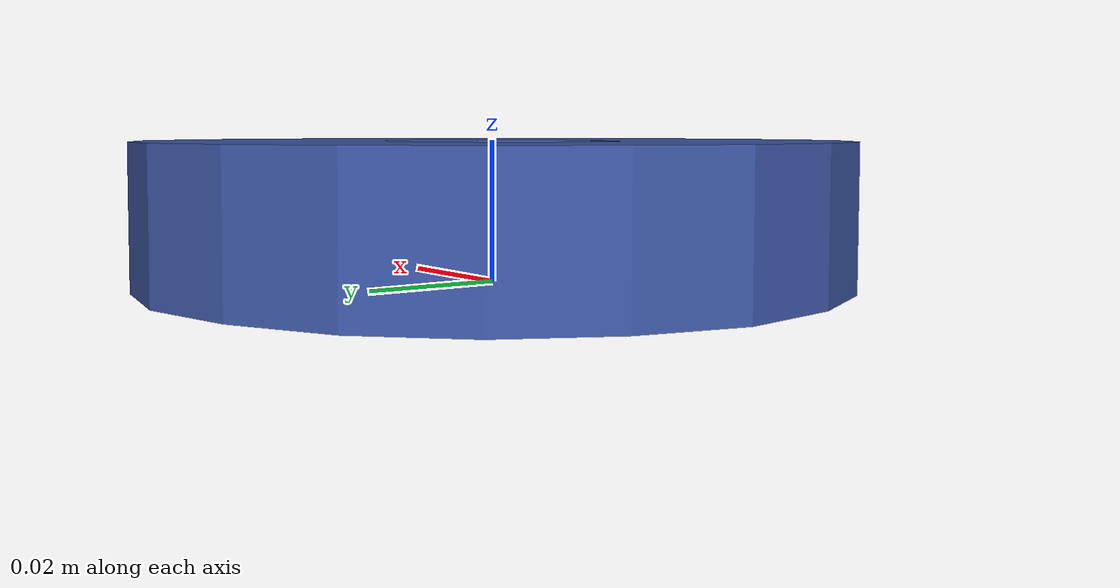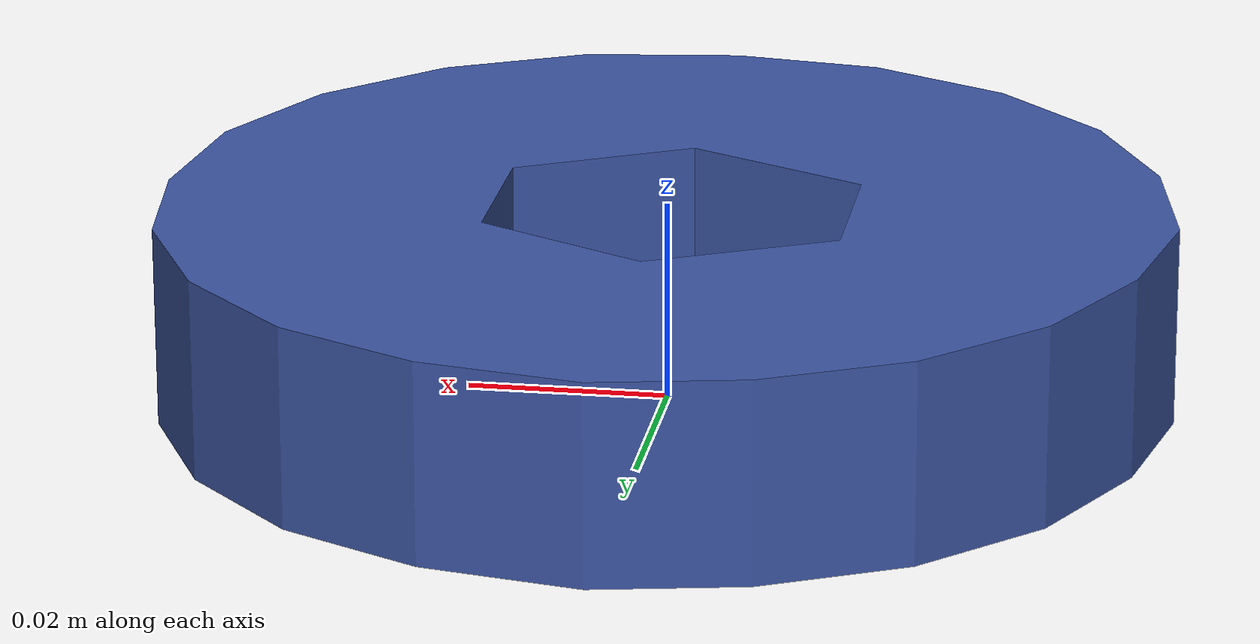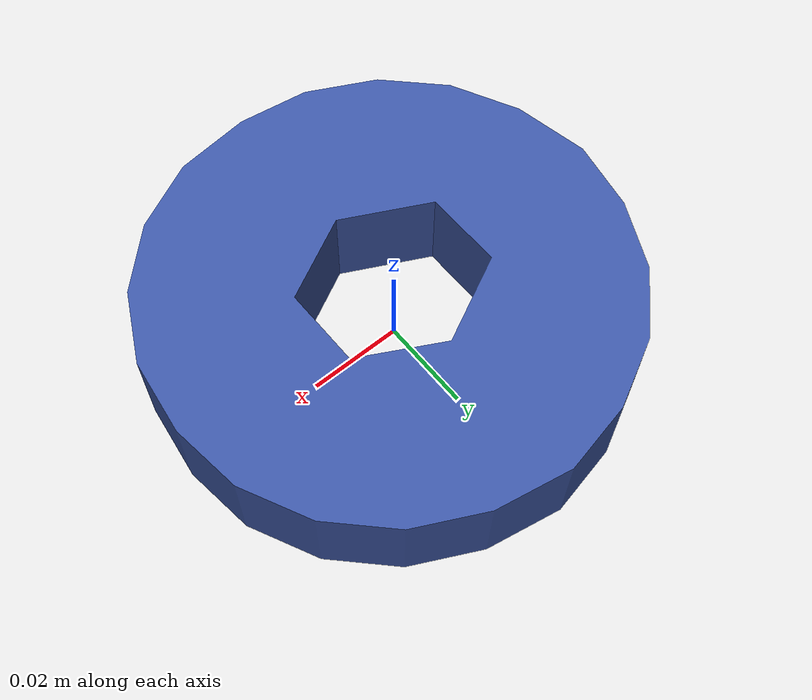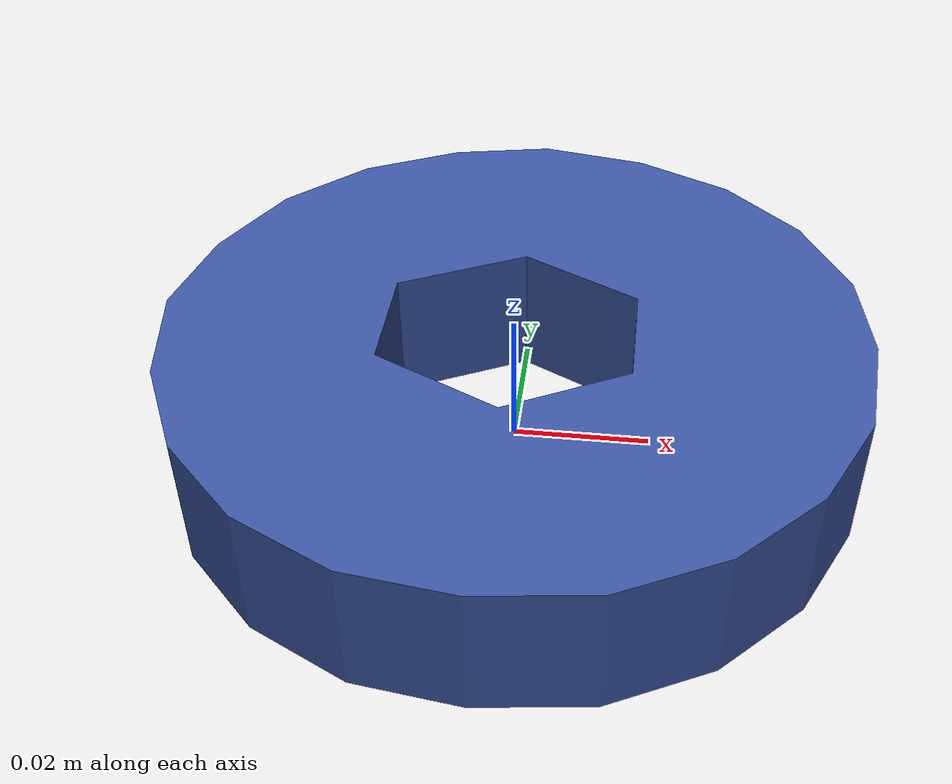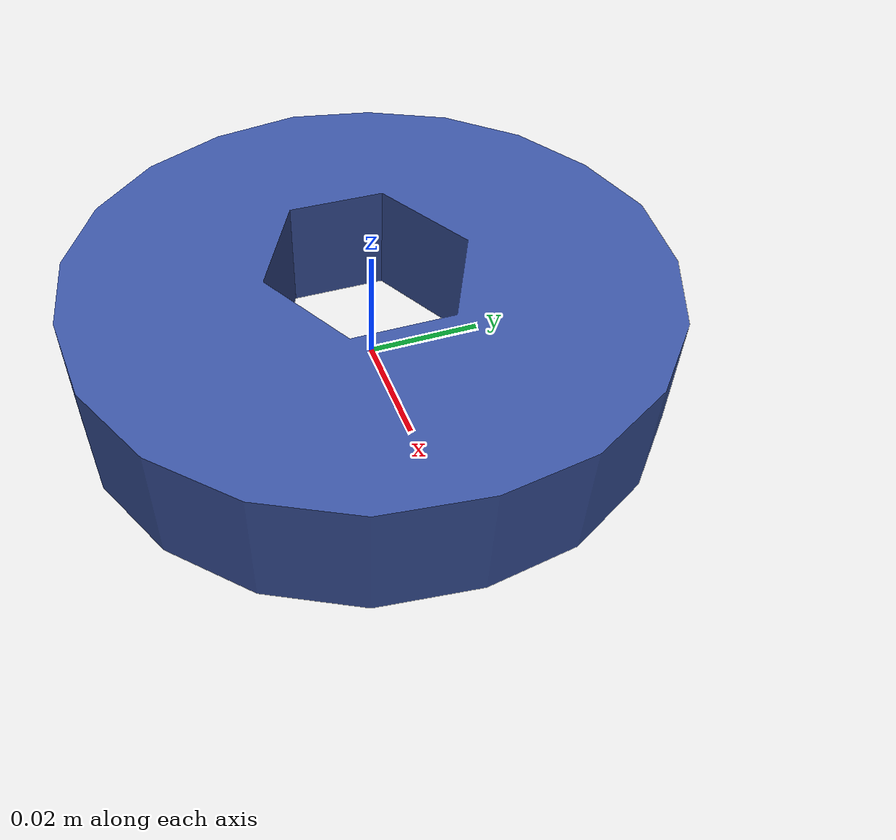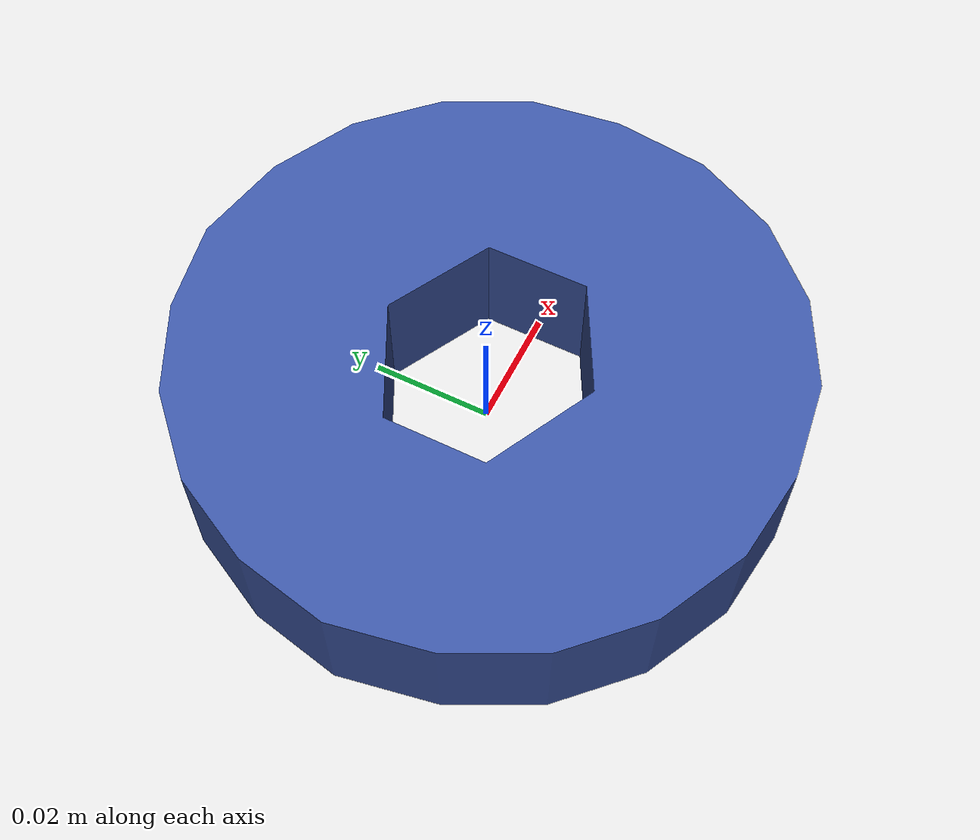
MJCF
<mujoco model="hole">
  <default>
    <default class="visual">
      <geom group="2" type="mesh" contype="0" conaffinity="0"/>
    </default>
    <default class="collision">
      <geom group="3" type="mesh"/>
    </default>
  </default>
  <asset>
    <material name="color_3888547" specular="0.5" shininess="0.5" rgba="0.23137254901960785 0.3333333333333333 0.6392156862745098 1"/>
    <mesh file="hole.obj"/>
    <mesh file="hole_collision_0.obj"/>
    <mesh file="hole_collision_1.obj"/>
    <mesh file="hole_collision_2.obj"/>
    <mesh file="hole_collision_3.obj"/>
    <mesh file="hole_collision_4.obj"/>
    <mesh file="hole_collision_5.obj"/>
    <mesh file="hole_collision_6.obj"/>
    <mesh file="hole_collision_7.obj"/>
    <mesh file="hole_collision_8.obj"/>
    <mesh file="hole_collision_9.obj"/>
    <mesh file="hole_collision_10.obj"/>
    <mesh file="hole_collision_11.obj"/>
    <mesh file="hole_collision_12.obj"/>
    <mesh file="hole_collision_13.obj"/>
    <mesh file="hole_collision_14.obj"/>
    <mesh file="hole_collision_15.obj"/>
    <mesh file="hole_collision_16.obj"/>
    <mesh file="hole_collision_17.obj"/>
    <mesh file="hole_collision_18.obj"/>
    <mesh file="hole_collision_19.obj"/>
    <mesh file="hole_collision_20.obj"/>
    <mesh file="hole_collision_21.obj"/>
    <mesh file="hole_collision_22.obj"/>
    <mesh file="hole_collision_23.obj"/>
    <mesh file="hole_collision_24.obj"/>
    <mesh file="hole_collision_25.obj"/>
    <mesh file="hole_collision_26.obj"/>
    <mesh file="hole_collision_27.obj"/>
    <mesh file="hole_collision_28.obj"/>
    <mesh file="hole_collision_29.obj"/>
    <mesh file="hole_collision_30.obj"/>
    <mesh file="hole_collision_31.obj"/>
  </asset>
  <worldbody>
    <body name="hole">
      <geom material="color_3888547" mesh="hole" class="visual"/>
      <geom mesh="hole_collision_0" class="collision"/>
      <geom mesh="hole_collision_1" class="collision"/>
      <geom mesh="hole_collision_2" class="collision"/>
      <geom mesh="hole_collision_3" class="collision"/>
      <geom mesh="hole_collision_4" class="collision"/>
      <geom mesh="hole_collision_5" class="collision"/>
      <geom mesh="hole_collision_6" class="collision"/>
      <geom mesh="hole_collision_7" class="collision"/>
      <geom mesh="hole_collision_8" class="collision"/>
      <geom mesh="hole_collision_9" class="collision"/>
      <geom mesh="hole_collision_10" class="collision"/>
      <geom mesh="hole_collision_11" class="collision"/>
      <geom mesh="hole_collision_12" class="collision"/>
      <geom mesh="hole_collision_13" class="collision"/>
      <geom mesh="hole_collision_14" class="collision"/>
      <geom mesh="hole_collision_15" class="collision"/>
      <geom mesh="hole_collision_16" class="collision"/>
      <geom mesh="hole_collision_17" class="collision"/>
      <geom mesh="hole_collision_18" class="collision"/>
      <geom mesh="hole_collision_19" class="collision"/>
      <geom mesh="hole_collision_20" class="collision"/>
      <geom mesh="hole_collision_21" class="collision"/>
      <geom mesh="hole_collision_22" class="collision"/>
      <geom mesh="hole_collision_23" class="collision"/>
      <geom mesh="hole_collision_24" class="collision"/>
      <geom mesh="hole_collision_25" class="collision"/>
      <geom mesh="hole_collision_26" class="collision"/>
      <geom mesh="hole_collision_27" class="collision"/>
      <geom mesh="hole_collision_28" class="collision"/>
      <geom mesh="hole_collision_29" class="collision"/>
      <geom mesh="hole_collision_30" class="collision"/>
      <geom mesh="hole_collision_31" class="collision"/>
    </body>
  </worldbody>
</mujoco>
